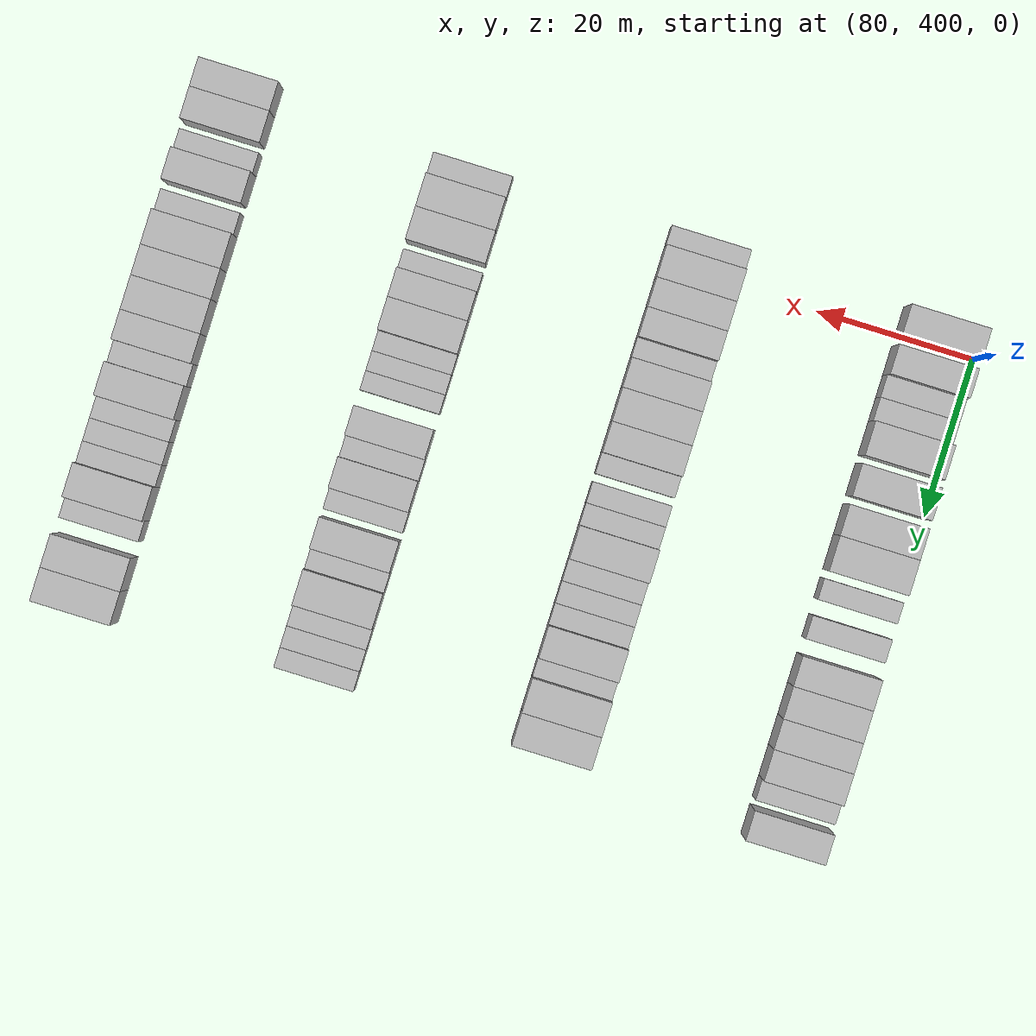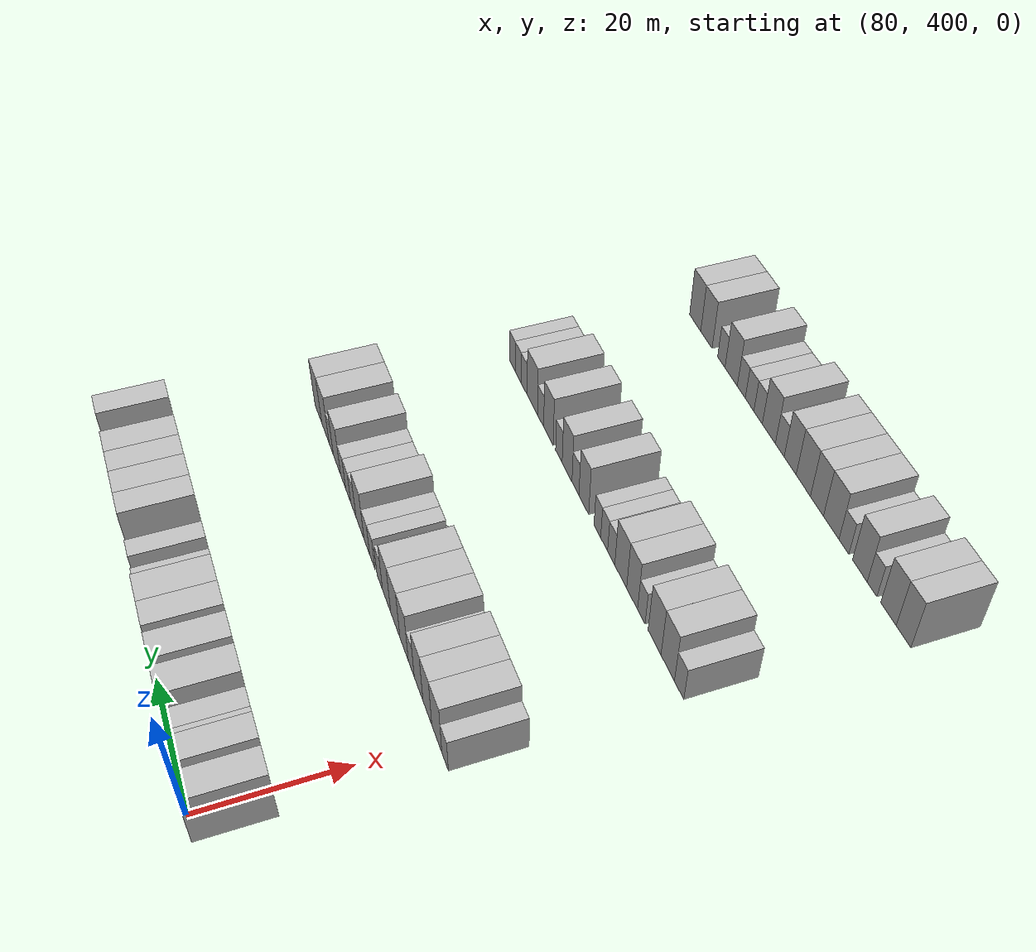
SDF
<sdf version="1.6">
 <world name="default">
  <model name="building_679">
   <static>1</static>
   <pose>85.0000 398.3762 0 0.000000 0.000000 0.000000</pose>
   <link name="link">
    <pose>0 0 4.50 0 0 0</pose>
    <collision name="collision"><geometry><box><size>10.0000 4.0211 9.0000</size></box></geometry></collision>
    <visual name="visual">
     <cast_shadows>0</cast_shadows>
     <geometry><box><size>10.0000 4.0211 9.0000</size></box></geometry>
     <material>
      <script>
       <uri>model://HANNAS_wall/materials/scripts</uri>
       <uri>model://HANNAS_wall/materials/textures</uri>
       <name>vrc/HANNAS_wall</name>
      </script>
     </material>
    </visual>
   </link>
  </model>
  <model name="building_680">
   <static>1</static>
   <pose>85.0000 403.2422 0 0.000000 0.000000 0.000000</pose>
   <link name="link">
    <pose>0 0 4.50 0 0 0</pose>
    <collision name="collision"><geometry><box><size>10.0000 3.7108 9.0000</size></box></geometry></collision>
    <visual name="visual">
     <cast_shadows>0</cast_shadows>
     <geometry><box><size>10.0000 3.7108 9.0000</size></box></geometry>
     <material>
      <script>
       <uri>model://HANNAS_wall/materials/scripts</uri>
       <uri>model://HANNAS_wall/materials/textures</uri>
       <name>vrc/HANNAS_wall</name>
      </script>
     </material>
    </visual>
   </link>
  </model>
  <model name="building_681">
   <static>1</static>
   <pose>85.0000 406.5217 0 0.000000 0.000000 0.000000</pose>
   <link name="link">
    <pose>0 0 3.00 0 0 0</pose>
    <collision name="collision"><geometry><box><size>10.0000 2.8482 6.0000</size></box></geometry></collision>
    <visual name="visual">
     <cast_shadows>0</cast_shadows>
     <geometry><box><size>10.0000 2.8482 6.0000</size></box></geometry>
     <material>
      <script>
       <uri>model://HANNAS_wall/materials/scripts</uri>
       <uri>model://HANNAS_wall/materials/textures</uri>
       <name>vrc/HANNAS_wall</name>
      </script>
     </material>
    </visual>
   </link>
  </model>
  <model name="building_682">
   <static>1</static>
   <pose>85.0000 409.4444 0 0.000000 0.000000 0.000000</pose>
   <link name="link">
    <pose>0 0 3.00 0 0 0</pose>
    <collision name="collision"><geometry><box><size>10.0000 2.9972 6.0000</size></box></geometry></collision>
    <visual name="visual">
     <cast_shadows>0</cast_shadows>
     <geometry><box><size>10.0000 2.9972 6.0000</size></box></geometry>
     <material>
      <script>
       <uri>model://HANNAS_wall/materials/scripts</uri>
       <uri>model://HANNAS_wall/materials/textures</uri>
       <name>vrc/HANNAS_wall</name>
      </script>
     </material>
    </visual>
   </link>
  </model>
  <model name="building_683">
   <static>1</static>
   <pose>85.0000 413.1042 0 0.000000 0.000000 0.000000</pose>
   <link name="link">
    <pose>0 0 4.50 0 0 0</pose>
    <collision name="collision"><geometry><box><size>10.0000 4.3224 9.0000</size></box></geometry></collision>
    <visual name="visual">
     <cast_shadows>0</cast_shadows>
     <geometry><box><size>10.0000 4.3224 9.0000</size></box></geometry>
     <material>
      <script>
       <uri>model://HANNAS_wall/materials/scripts</uri>
       <uri>model://HANNAS_wall/materials/textures</uri>
       <name>vrc/HANNAS_wall</name>
      </script>
     </material>
    </visual>
   </link>
  </model>
  <model name="building_684">
   <static>1</static>
   <pose>85.0000 418.3168 0 0.000000 0.000000 0.000000</pose>
   <link name="link">
    <pose>0 0 4.50 0 0 0</pose>
    <collision name="collision"><geometry><box><size>10.0000 4.1027 9.0000</size></box></geometry></collision>
    <visual name="visual">
     <cast_shadows>0</cast_shadows>
     <geometry><box><size>10.0000 4.1027 9.0000</size></box></geometry>
     <material>
      <script>
       <uri>model://HANNAS_wall/materials/scripts</uri>
       <uri>model://HANNAS_wall/materials/textures</uri>
       <name>vrc/HANNAS_wall</name>
      </script>
     </material>
    </visual>
   </link>
  </model>
  <model name="building_685">
   <static>1</static>
   <pose>85.0000 423.3321 0 0.000000 0.000000 0.000000</pose>
   <link name="link">
    <pose>0 0 4.50 0 0 0</pose>
    <collision name="collision"><geometry><box><size>10.0000 3.9280 9.0000</size></box></geometry></collision>
    <visual name="visual">
     <cast_shadows>0</cast_shadows>
     <geometry><box><size>10.0000 3.9280 9.0000</size></box></geometry>
     <material>
      <script>
       <uri>model://HANNAS_wall/materials/scripts</uri>
       <uri>model://HANNAS_wall/materials/textures</uri>
       <name>vrc/HANNAS_wall</name>
      </script>
     </material>
    </visual>
   </link>
  </model>
  <model name="building_686">
   <static>1</static>
   <pose>85.0000 427.5141 0 0.000000 0.000000 0.000000</pose>
   <link name="link">
    <pose>0 0 4.50 0 0 0</pose>
    <collision name="collision"><geometry><box><size>10.0000 4.4359 9.0000</size></box></geometry></collision>
    <visual name="visual">
     <cast_shadows>0</cast_shadows>
     <geometry><box><size>10.0000 4.4359 9.0000</size></box></geometry>
     <material>
      <script>
       <uri>model://HANNAS_wall/materials/scripts</uri>
       <uri>model://HANNAS_wall/materials/textures</uri>
       <name>vrc/HANNAS_wall</name>
      </script>
     </material>
    </visual>
   </link>
  </model>
  <model name="building_687">
   <static>1</static>
   <pose>85.0000 432.0544 0 0.000000 0.000000 0.000000</pose>
   <link name="link">
    <pose>0 0 3.00 0 0 0</pose>
    <collision name="collision"><geometry><box><size>10.0000 2.6449 6.0000</size></box></geometry></collision>
    <visual name="visual">
     <cast_shadows>0</cast_shadows>
     <geometry><box><size>10.0000 2.6449 6.0000</size></box></geometry>
     <material>
      <script>
       <uri>model://HANNAS_wall/materials/scripts</uri>
       <uri>model://HANNAS_wall/materials/textures</uri>
       <name>vrc/HANNAS_wall</name>
      </script>
     </material>
    </visual>
   </link>
  </model>
  <model name="building_688">
   <static>1</static>
   <pose>85.0000 436.8455 0 0.000000 0.000000 0.000000</pose>
   <link name="link">
    <pose>0 0 3.00 0 0 0</pose>
    <collision name="collision"><geometry><box><size>10.0000 2.9373 6.0000</size></box></geometry></collision>
    <visual name="visual">
     <cast_shadows>0</cast_shadows>
     <geometry><box><size>10.0000 2.9373 6.0000</size></box></geometry>
     <material>
      <script>
       <uri>model://HANNAS_wall/materials/scripts</uri>
       <uri>model://HANNAS_wall/materials/textures</uri>
       <name>vrc/HANNAS_wall</name>
      </script>
     </material>
    </visual>
   </link>
  </model>
  <model name="building_689">
   <static>1</static>
   <pose>85.0000 442.2141 0 0.000000 0.000000 0.000000</pose>
   <link name="link">
    <pose>0 0 4.50 0 0 0</pose>
    <collision name="collision"><geometry><box><size>10.0000 3.7998 9.0000</size></box></geometry></collision>
    <visual name="visual">
     <cast_shadows>0</cast_shadows>
     <geometry><box><size>10.0000 3.7998 9.0000</size></box></geometry>
     <material>
      <script>
       <uri>model://HANNAS_wall/materials/scripts</uri>
       <uri>model://HANNAS_wall/materials/textures</uri>
       <name>vrc/HANNAS_wall</name>
      </script>
     </material>
    </visual>
   </link>
  </model>
  <model name="building_690">
   <static>1</static>
   <pose>85.0000 446.1429 0 0.000000 0.000000 0.000000</pose>
   <link name="link">
    <pose>0 0 4.50 0 0 0</pose>
    <collision name="collision"><geometry><box><size>10.0000 4.0579 9.0000</size></box></geometry></collision>
    <visual name="visual">
     <cast_shadows>0</cast_shadows>
     <geometry><box><size>10.0000 4.0579 9.0000</size></box></geometry>
     <material>
      <script>
       <uri>model://HANNAS_wall/materials/scripts</uri>
       <uri>model://HANNAS_wall/materials/textures</uri>
       <name>vrc/HANNAS_wall</name>
      </script>
     </material>
    </visual>
   </link>
  </model>
  <model name="building_691">
   <static>1</static>
   <pose>85.0000 450.0762 0 0.000000 0.000000 0.000000</pose>
   <link name="link">
    <pose>0 0 4.50 0 0 0</pose>
    <collision name="collision"><geometry><box><size>10.0000 3.8086 9.0000</size></box></geometry></collision>
    <visual name="visual">
     <cast_shadows>0</cast_shadows>
     <geometry><box><size>10.0000 3.8086 9.0000</size></box></geometry>
     <material>
      <script>
       <uri>model://HANNAS_wall/materials/scripts</uri>
       <uri>model://HANNAS_wall/materials/textures</uri>
       <name>vrc/HANNAS_wall</name>
      </script>
     </material>
    </visual>
   </link>
  </model>
  <model name="building_692">
   <static>1</static>
   <pose>85.0000 453.9712 0 0.000000 0.000000 0.000000</pose>
   <link name="link">
    <pose>0 0 4.50 0 0 0</pose>
    <collision name="collision"><geometry><box><size>10.0000 3.9814 9.0000</size></box></geometry></collision>
    <visual name="visual">
     <cast_shadows>0</cast_shadows>
     <geometry><box><size>10.0000 3.9814 9.0000</size></box></geometry>
     <material>
      <script>
       <uri>model://HANNAS_wall/materials/scripts</uri>
       <uri>model://HANNAS_wall/materials/textures</uri>
       <name>vrc/HANNAS_wall</name>
      </script>
     </material>
    </visual>
   </link>
  </model>
  <model name="building_693">
   <static>1</static>
   <pose>85.0000 457.2865 0 0.000000 0.000000 0.000000</pose>
   <link name="link">
    <pose>0 0 3.00 0 0 0</pose>
    <collision name="collision"><geometry><box><size>10.0000 2.6492 6.0000</size></box></geometry></collision>
    <visual name="visual">
     <cast_shadows>0</cast_shadows>
     <geometry><box><size>10.0000 2.6492 6.0000</size></box></geometry>
     <material>
      <script>
       <uri>model://HANNAS_wall/materials/scripts</uri>
       <uri>model://HANNAS_wall/materials/textures</uri>
       <name>vrc/HANNAS_wall</name>
      </script>
     </material>
    </visual>
   </link>
  </model>
  <model name="building_694">
   <static>1</static>
   <pose>85.0000 461.4906 0 0.000000 0.000000 0.000000</pose>
   <link name="link">
    <pose>0 0 4.50 0 0 0</pose>
    <collision name="collision"><geometry><box><size>10.0000 3.7590 9.0000</size></box></geometry></collision>
    <visual name="visual">
     <cast_shadows>0</cast_shadows>
     <geometry><box><size>10.0000 3.7590 9.0000</size></box></geometry>
     <material>
      <script>
       <uri>model://HANNAS_wall/materials/scripts</uri>
       <uri>model://HANNAS_wall/materials/textures</uri>
       <name>vrc/HANNAS_wall</name>
      </script>
     </material>
    </visual>
   </link>
  </model>
  <model name="building_902">
   <static>1</static>
   <pose>115.0000 396.9430 0 0.000000 0.000000 0.000000</pose>
   <link name="link">
    <pose>0 0 3.00 0 0 0</pose>
    <collision name="collision"><geometry><box><size>10.0000 2.5933 6.0000</size></box></geometry></collision>
    <visual name="visual">
     <cast_shadows>0</cast_shadows>
     <geometry><box><size>10.0000 2.5933 6.0000</size></box></geometry>
     <material>
      <script>
       <uri>model://HANNAS_wall/materials/scripts</uri>
       <uri>model://HANNAS_wall/materials/textures</uri>
       <name>vrc/HANNAS_wall</name>
      </script>
     </material>
    </visual>
   </link>
  </model>
  <model name="building_903">
   <static>1</static>
   <pose>115.0000 400.2693 0 0.000000 0.000000 0.000000</pose>
   <link name="link">
    <pose>0 0 4.50 0 0 0</pose>
    <collision name="collision"><geometry><box><size>10.0000 4.0593 9.0000</size></box></geometry></collision>
    <visual name="visual">
     <cast_shadows>0</cast_shadows>
     <geometry><box><size>10.0000 4.0593 9.0000</size></box></geometry>
     <material>
      <script>
       <uri>model://HANNAS_wall/materials/scripts</uri>
       <uri>model://HANNAS_wall/materials/textures</uri>
       <name>vrc/HANNAS_wall</name>
      </script>
     </material>
    </visual>
   </link>
  </model>
  <model name="building_904">
   <static>1</static>
   <pose>115.0000 404.1450 0 0.000000 0.000000 0.000000</pose>
   <link name="link">
    <pose>0 0 4.50 0 0 0</pose>
    <collision name="collision"><geometry><box><size>10.0000 3.6921 9.0000</size></box></geometry></collision>
    <visual name="visual">
     <cast_shadows>0</cast_shadows>
     <geometry><box><size>10.0000 3.6921 9.0000</size></box></geometry>
     <material>
      <script>
       <uri>model://HANNAS_wall/materials/scripts</uri>
       <uri>model://HANNAS_wall/materials/textures</uri>
       <name>vrc/HANNAS_wall</name>
      </script>
     </material>
    </visual>
   </link>
  </model>
  <model name="building_905">
   <static>1</static>
   <pose>115.0000 407.8509 0 0.000000 0.000000 0.000000</pose>
   <link name="link">
    <pose>0 0 4.50 0 0 0</pose>
    <collision name="collision"><geometry><box><size>10.0000 3.7197 9.0000</size></box></geometry></collision>
    <visual name="visual">
     <cast_shadows>0</cast_shadows>
     <geometry><box><size>10.0000 3.7197 9.0000</size></box></geometry>
     <material>
      <script>
       <uri>model://HANNAS_wall/materials/scripts</uri>
       <uri>model://HANNAS_wall/materials/textures</uri>
       <name>vrc/HANNAS_wall</name>
      </script>
     </material>
    </visual>
   </link>
  </model>
  <model name="building_906">
   <static>1</static>
   <pose>115.0000 411.0105 0 0.000000 0.000000 0.000000</pose>
   <link name="link">
    <pose>0 0 3.00 0 0 0</pose>
    <collision name="collision"><geometry><box><size>10.0000 2.5994 6.0000</size></box></geometry></collision>
    <visual name="visual">
     <cast_shadows>0</cast_shadows>
     <geometry><box><size>10.0000 2.5994 6.0000</size></box></geometry>
     <material>
      <script>
       <uri>model://HANNAS_wall/materials/scripts</uri>
       <uri>model://HANNAS_wall/materials/textures</uri>
       <name>vrc/HANNAS_wall</name>
      </script>
     </material>
    </visual>
   </link>
  </model>
  <model name="building_907">
   <static>1</static>
   <pose>115.0000 414.1818 0 0.000000 0.000000 0.000000</pose>
   <link name="link">
    <pose>0 0 4.50 0 0 0</pose>
    <collision name="collision"><geometry><box><size>10.0000 3.7432 9.0000</size></box></geometry></collision>
    <visual name="visual">
     <cast_shadows>0</cast_shadows>
     <geometry><box><size>10.0000 3.7432 9.0000</size></box></geometry>
     <material>
      <script>
       <uri>model://HANNAS_wall/materials/scripts</uri>
       <uri>model://HANNAS_wall/materials/textures</uri>
       <name>vrc/HANNAS_wall</name>
      </script>
     </material>
    </visual>
   </link>
  </model>
  <model name="building_908">
   <static>1</static>
   <pose>115.0000 418.1781 0 0.000000 0.000000 0.000000</pose>
   <link name="link">
    <pose>0 0 4.50 0 0 0</pose>
    <collision name="collision"><geometry><box><size>10.0000 4.2494 9.0000</size></box></geometry></collision>
    <visual name="visual">
     <cast_shadows>0</cast_shadows>
     <geometry><box><size>10.0000 4.2494 9.0000</size></box></geometry>
     <material>
      <script>
       <uri>model://HANNAS_wall/materials/scripts</uri>
       <uri>model://HANNAS_wall/materials/textures</uri>
       <name>vrc/HANNAS_wall</name>
      </script>
     </material>
    </visual>
   </link>
  </model>
  <model name="building_909">
   <static>1</static>
   <pose>115.0000 422.2419 0 0.000000 0.000000 0.000000</pose>
   <link name="link">
    <pose>0 0 4.50 0 0 0</pose>
    <collision name="collision"><geometry><box><size>10.0000 3.8782 9.0000</size></box></geometry></collision>
    <visual name="visual">
     <cast_shadows>0</cast_shadows>
     <geometry><box><size>10.0000 3.8782 9.0000</size></box></geometry>
     <material>
      <script>
       <uri>model://HANNAS_wall/materials/scripts</uri>
       <uri>model://HANNAS_wall/materials/textures</uri>
       <name>vrc/HANNAS_wall</name>
      </script>
     </material>
    </visual>
   </link>
  </model>
  <model name="building_910">
   <static>1</static>
   <pose>115.0000 425.5194 0 0.000000 0.000000 0.000000</pose>
   <link name="link">
    <pose>0 0 3.00 0 0 0</pose>
    <collision name="collision"><geometry><box><size>10.0000 2.6766 6.0000</size></box></geometry></collision>
    <visual name="visual">
     <cast_shadows>0</cast_shadows>
     <geometry><box><size>10.0000 2.6766 6.0000</size></box></geometry>
     <material>
      <script>
       <uri>model://HANNAS_wall/materials/scripts</uri>
       <uri>model://HANNAS_wall/materials/textures</uri>
       <name>vrc/HANNAS_wall</name>
      </script>
     </material>
    </visual>
   </link>
  </model>
  <model name="building_911">
   <static>1</static>
   <pose>115.0000 429.1907 0 0.000000 0.000000 0.000000</pose>
   <link name="link">
    <pose>0 0 3.00 0 0 0</pose>
    <collision name="collision"><geometry><box><size>10.0000 2.6661 6.0000</size></box></geometry></collision>
    <visual name="visual">
     <cast_shadows>0</cast_shadows>
     <geometry><box><size>10.0000 2.6661 6.0000</size></box></geometry>
     <material>
      <script>
       <uri>model://HANNAS_wall/materials/scripts</uri>
       <uri>model://HANNAS_wall/materials/textures</uri>
       <name>vrc/HANNAS_wall</name>
      </script>
     </material>
    </visual>
   </link>
  </model>
  <model name="building_912">
   <static>1</static>
   <pose>115.0000 431.9217 0 0.000000 0.000000 0.000000</pose>
   <link name="link">
    <pose>0 0 3.00 0 0 0</pose>
    <collision name="collision"><geometry><box><size>10.0000 2.7958 6.0000</size></box></geometry></collision>
    <visual name="visual">
     <cast_shadows>0</cast_shadows>
     <geometry><box><size>10.0000 2.7958 6.0000</size></box></geometry>
     <material>
      <script>
       <uri>model://HANNAS_wall/materials/scripts</uri>
       <uri>model://HANNAS_wall/materials/textures</uri>
       <name>vrc/HANNAS_wall</name>
      </script>
     </material>
    </visual>
   </link>
  </model>
  <model name="building_913">
   <static>1</static>
   <pose>115.0000 435.4142 0 0.000000 0.000000 0.000000</pose>
   <link name="link">
    <pose>0 0 4.50 0 0 0</pose>
    <collision name="collision"><geometry><box><size>10.0000 4.1893 9.0000</size></box></geometry></collision>
    <visual name="visual">
     <cast_shadows>0</cast_shadows>
     <geometry><box><size>10.0000 4.1893 9.0000</size></box></geometry>
     <material>
      <script>
       <uri>model://HANNAS_wall/materials/scripts</uri>
       <uri>model://HANNAS_wall/materials/textures</uri>
       <name>vrc/HANNAS_wall</name>
      </script>
     </material>
    </visual>
   </link>
  </model>
  <model name="building_914">
   <static>1</static>
   <pose>115.0000 438.9153 0 0.000000 0.000000 0.000000</pose>
   <link name="link">
    <pose>0 0 3.00 0 0 0</pose>
    <collision name="collision"><geometry><box><size>10.0000 2.8129 6.0000</size></box></geometry></collision>
    <visual name="visual">
     <cast_shadows>0</cast_shadows>
     <geometry><box><size>10.0000 2.8129 6.0000</size></box></geometry>
     <material>
      <script>
       <uri>model://HANNAS_wall/materials/scripts</uri>
       <uri>model://HANNAS_wall/materials/textures</uri>
       <name>vrc/HANNAS_wall</name>
      </script>
     </material>
    </visual>
   </link>
  </model>
  <model name="building_915">
   <static>1</static>
   <pose>115.0000 441.7158 0 0.000000 0.000000 0.000000</pose>
   <link name="link">
    <pose>0 0 3.00 0 0 0</pose>
    <collision name="collision"><geometry><box><size>10.0000 2.7881 6.0000</size></box></geometry></collision>
    <visual name="visual">
     <cast_shadows>0</cast_shadows>
     <geometry><box><size>10.0000 2.7881 6.0000</size></box></geometry>
     <material>
      <script>
       <uri>model://HANNAS_wall/materials/scripts</uri>
       <uri>model://HANNAS_wall/materials/textures</uri>
       <name>vrc/HANNAS_wall</name>
      </script>
     </material>
    </visual>
   </link>
  </model>
  <model name="building_916">
   <static>1</static>
   <pose>115.0000 444.4698 0 0.000000 0.000000 0.000000</pose>
   <link name="link">
    <pose>0 0 3.00 0 0 0</pose>
    <collision name="collision"><geometry><box><size>10.0000 2.7198 6.0000</size></box></geometry></collision>
    <visual name="visual">
     <cast_shadows>0</cast_shadows>
     <geometry><box><size>10.0000 2.7198 6.0000</size></box></geometry>
     <material>
      <script>
       <uri>model://HANNAS_wall/materials/scripts</uri>
       <uri>model://HANNAS_wall/materials/textures</uri>
       <name>vrc/HANNAS_wall</name>
      </script>
     </material>
    </visual>
   </link>
  </model>
  <model name="building_917">
   <static>1</static>
   <pose>115.0000 447.8692 0 0.000000 0.000000 0.000000</pose>
   <link name="link">
    <pose>0 0 4.50 0 0 0</pose>
    <collision name="collision"><geometry><box><size>10.0000 4.0789 9.0000</size></box></geometry></collision>
    <visual name="visual">
     <cast_shadows>0</cast_shadows>
     <geometry><box><size>10.0000 4.0789 9.0000</size></box></geometry>
     <material>
      <script>
       <uri>model://HANNAS_wall/materials/scripts</uri>
       <uri>model://HANNAS_wall/materials/textures</uri>
       <name>vrc/HANNAS_wall</name>
      </script>
     </material>
    </visual>
   </link>
  </model>
  <model name="building_918">
   <static>1</static>
   <pose>115.0000 451.1401 0 0.000000 0.000000 0.000000</pose>
   <link name="link">
    <pose>0 0 3.00 0 0 0</pose>
    <collision name="collision"><geometry><box><size>10.0000 2.4627 6.0000</size></box></geometry></collision>
    <visual name="visual">
     <cast_shadows>0</cast_shadows>
     <geometry><box><size>10.0000 2.4627 6.0000</size></box></geometry>
     <material>
      <script>
       <uri>model://HANNAS_wall/materials/scripts</uri>
       <uri>model://HANNAS_wall/materials/textures</uri>
       <name>vrc/HANNAS_wall</name>
      </script>
     </material>
    </visual>
   </link>
  </model>
  <model name="building_919">
   <static>1</static>
   <pose>115.0000 454.5437 0 0.000000 0.000000 0.000000</pose>
   <link name="link">
    <pose>0 0 4.50 0 0 0</pose>
    <collision name="collision"><geometry><box><size>10.0000 4.3446 9.0000</size></box></geometry></collision>
    <visual name="visual">
     <cast_shadows>0</cast_shadows>
     <geometry><box><size>10.0000 4.3446 9.0000</size></box></geometry>
     <material>
      <script>
       <uri>model://HANNAS_wall/materials/scripts</uri>
       <uri>model://HANNAS_wall/materials/textures</uri>
       <name>vrc/HANNAS_wall</name>
      </script>
     </material>
    </visual>
   </link>
  </model>
  <model name="building_920">
   <static>1</static>
   <pose>115.0000 458.7756 0 0.000000 0.000000 0.000000</pose>
   <link name="link">
    <pose>0 0 4.50 0 0 0</pose>
    <collision name="collision"><geometry><box><size>10.0000 4.1192 9.0000</size></box></geometry></collision>
    <visual name="visual">
     <cast_shadows>0</cast_shadows>
     <geometry><box><size>10.0000 4.1192 9.0000</size></box></geometry>
     <material>
      <script>
       <uri>model://HANNAS_wall/materials/scripts</uri>
       <uri>model://HANNAS_wall/materials/textures</uri>
       <name>vrc/HANNAS_wall</name>
      </script>
     </material>
    </visual>
   </link>
  </model>
  <model name="building_1129">
   <static>1</static>
   <pose>145.0000 397.1536 0 0.000000 0.000000 0.000000</pose>
   <link name="link">
    <pose>0 0 3.00 0 0 0</pose>
    <collision name="collision"><geometry><box><size>10.0000 2.8526 6.0000</size></box></geometry></collision>
    <visual name="visual">
     <cast_shadows>0</cast_shadows>
     <geometry><box><size>10.0000 2.8526 6.0000</size></box></geometry>
     <material>
      <script>
       <uri>model://HANNAS_wall/materials/scripts</uri>
       <uri>model://HANNAS_wall/materials/textures</uri>
       <name>vrc/HANNAS_wall</name>
      </script>
     </material>
    </visual>
   </link>
  </model>
  <model name="building_1130">
   <static>1</static>
   <pose>145.0000 400.6649 0 0.000000 0.000000 0.000000</pose>
   <link name="link">
    <pose>0 0 4.50 0 0 0</pose>
    <collision name="collision"><geometry><box><size>10.0000 4.1701 9.0000</size></box></geometry></collision>
    <visual name="visual">
     <cast_shadows>0</cast_shadows>
     <geometry><box><size>10.0000 4.1701 9.0000</size></box></geometry>
     <material>
      <script>
       <uri>model://HANNAS_wall/materials/scripts</uri>
       <uri>model://HANNAS_wall/materials/textures</uri>
       <name>vrc/HANNAS_wall</name>
      </script>
     </material>
    </visual>
   </link>
  </model>
  <model name="building_1131">
   <static>1</static>
   <pose>145.0000 404.8134 0 0.000000 0.000000 0.000000</pose>
   <link name="link">
    <pose>0 0 4.50 0 0 0</pose>
    <collision name="collision"><geometry><box><size>10.0000 4.1267 9.0000</size></box></geometry></collision>
    <visual name="visual">
     <cast_shadows>0</cast_shadows>
     <geometry><box><size>10.0000 4.1267 9.0000</size></box></geometry>
     <material>
      <script>
       <uri>model://HANNAS_wall/materials/scripts</uri>
       <uri>model://HANNAS_wall/materials/textures</uri>
       <name>vrc/HANNAS_wall</name>
      </script>
     </material>
    </visual>
   </link>
  </model>
  <model name="building_1132">
   <static>1</static>
   <pose>145.0000 409.1134 0 0.000000 0.000000 0.000000</pose>
   <link name="link">
    <pose>0 0 3.00 0 0 0</pose>
    <collision name="collision"><geometry><box><size>10.0000 2.4734 6.0000</size></box></geometry></collision>
    <visual name="visual">
     <cast_shadows>0</cast_shadows>
     <geometry><box><size>10.0000 2.4734 6.0000</size></box></geometry>
     <material>
      <script>
       <uri>model://HANNAS_wall/materials/scripts</uri>
       <uri>model://HANNAS_wall/materials/textures</uri>
       <name>vrc/HANNAS_wall</name>
      </script>
     </material>
    </visual>
   </link>
  </model>
  <model name="building_1133">
   <static>1</static>
   <pose>145.0000 412.1909 0 0.000000 0.000000 0.000000</pose>
   <link name="link">
    <pose>0 0 4.50 0 0 0</pose>
    <collision name="collision"><geometry><box><size>10.0000 3.6815 9.0000</size></box></geometry></collision>
    <visual name="visual">
     <cast_shadows>0</cast_shadows>
     <geometry><box><size>10.0000 3.6815 9.0000</size></box></geometry>
     <material>
      <script>
       <uri>model://HANNAS_wall/materials/scripts</uri>
       <uri>model://HANNAS_wall/materials/textures</uri>
       <name>vrc/HANNAS_wall</name>
      </script>
     </material>
    </visual>
   </link>
  </model>
  <model name="building_1134">
   <static>1</static>
   <pose>145.0000 416.0917 0 0.000000 0.000000 0.000000</pose>
   <link name="link">
    <pose>0 0 4.50 0 0 0</pose>
    <collision name="collision"><geometry><box><size>10.0000 4.1201 9.0000</size></box></geometry></collision>
    <visual name="visual">
     <cast_shadows>0</cast_shadows>
     <geometry><box><size>10.0000 4.1201 9.0000</size></box></geometry>
     <material>
      <script>
       <uri>model://HANNAS_wall/materials/scripts</uri>
       <uri>model://HANNAS_wall/materials/textures</uri>
       <name>vrc/HANNAS_wall</name>
      </script>
     </material>
    </visual>
   </link>
  </model>
  <model name="building_1135">
   <static>1</static>
   <pose>145.0000 419.4230 0 0.000000 0.000000 0.000000</pose>
   <link name="link">
    <pose>0 0 3.00 0 0 0</pose>
    <collision name="collision"><geometry><box><size>10.0000 2.5425 6.0000</size></box></geometry></collision>
    <visual name="visual">
     <cast_shadows>0</cast_shadows>
     <geometry><box><size>10.0000 2.5425 6.0000</size></box></geometry>
     <material>
      <script>
       <uri>model://HANNAS_wall/materials/scripts</uri>
       <uri>model://HANNAS_wall/materials/textures</uri>
       <name>vrc/HANNAS_wall</name>
      </script>
     </material>
    </visual>
   </link>
  </model>
  <model name="building_1136">
   <static>1</static>
   <pose>145.0000 421.9467 0 0.000000 0.000000 0.000000</pose>
   <link name="link">
    <pose>0 0 3.00 0 0 0</pose>
    <collision name="collision"><geometry><box><size>10.0000 2.5048 6.0000</size></box></geometry></collision>
    <visual name="visual">
     <cast_shadows>0</cast_shadows>
     <geometry><box><size>10.0000 2.5048 6.0000</size></box></geometry>
     <material>
      <script>
       <uri>model://HANNAS_wall/materials/scripts</uri>
       <uri>model://HANNAS_wall/materials/textures</uri>
       <name>vrc/HANNAS_wall</name>
      </script>
     </material>
    </visual>
   </link>
  </model>
  <model name="building_1137">
   <static>1</static>
   <pose>145.0000 424.4106 0 0.000000 0.000000 0.000000</pose>
   <link name="link">
    <pose>0 0 3.00 0 0 0</pose>
    <collision name="collision"><geometry><box><size>10.0000 2.4231 6.0000</size></box></geometry></collision>
    <visual name="visual">
     <cast_shadows>0</cast_shadows>
     <geometry><box><size>10.0000 2.4231 6.0000</size></box></geometry>
     <material>
      <script>
       <uri>model://HANNAS_wall/materials/scripts</uri>
       <uri>model://HANNAS_wall/materials/textures</uri>
       <name>vrc/HANNAS_wall</name>
      </script>
     </material>
    </visual>
   </link>
  </model>
  <model name="building_1138">
   <static>1</static>
   <pose>145.0000 429.4824 0 0.000000 0.000000 0.000000</pose>
   <link name="link">
    <pose>0 0 4.50 0 0 0</pose>
    <collision name="collision"><geometry><box><size>10.0000 3.7204 9.0000</size></box></geometry></collision>
    <visual name="visual">
     <cast_shadows>0</cast_shadows>
     <geometry><box><size>10.0000 3.7204 9.0000</size></box></geometry>
     <material>
      <script>
       <uri>model://HANNAS_wall/materials/scripts</uri>
       <uri>model://HANNAS_wall/materials/textures</uri>
       <name>vrc/HANNAS_wall</name>
      </script>
     </material>
    </visual>
   </link>
  </model>
  <model name="building_1139">
   <static>1</static>
   <pose>145.0000 432.6887 0 0.000000 0.000000 0.000000</pose>
   <link name="link">
    <pose>0 0 3.00 0 0 0</pose>
    <collision name="collision"><geometry><box><size>10.0000 2.6922 6.0000</size></box></geometry></collision>
    <visual name="visual">
     <cast_shadows>0</cast_shadows>
     <geometry><box><size>10.0000 2.6922 6.0000</size></box></geometry>
     <material>
      <script>
       <uri>model://HANNAS_wall/materials/scripts</uri>
       <uri>model://HANNAS_wall/materials/textures</uri>
       <name>vrc/HANNAS_wall</name>
      </script>
     </material>
    </visual>
   </link>
  </model>
  <model name="building_1140">
   <static>1</static>
   <pose>145.0000 435.9820 0 0.000000 0.000000 0.000000</pose>
   <link name="link">
    <pose>0 0 4.50 0 0 0</pose>
    <collision name="collision"><geometry><box><size>10.0000 3.8946 9.0000</size></box></geometry></collision>
    <visual name="visual">
     <cast_shadows>0</cast_shadows>
     <geometry><box><size>10.0000 3.8946 9.0000</size></box></geometry>
     <material>
      <script>
       <uri>model://HANNAS_wall/materials/scripts</uri>
       <uri>model://HANNAS_wall/materials/textures</uri>
       <name>vrc/HANNAS_wall</name>
      </script>
     </material>
    </visual>
   </link>
  </model>
  <model name="building_1141">
   <static>1</static>
   <pose>145.0000 439.2480 0 0.000000 0.000000 0.000000</pose>
   <link name="link">
    <pose>0 0 3.00 0 0 0</pose>
    <collision name="collision"><geometry><box><size>10.0000 2.6372 6.0000</size></box></geometry></collision>
    <visual name="visual">
     <cast_shadows>0</cast_shadows>
     <geometry><box><size>10.0000 2.6372 6.0000</size></box></geometry>
     <material>
      <script>
       <uri>model://HANNAS_wall/materials/scripts</uri>
       <uri>model://HANNAS_wall/materials/textures</uri>
       <name>vrc/HANNAS_wall</name>
      </script>
     </material>
    </visual>
   </link>
  </model>
  <model name="building_1142">
   <static>1</static>
   <pose>145.0000 443.5392 0 0.000000 0.000000 0.000000</pose>
   <link name="link">
    <pose>0 0 4.50 0 0 0</pose>
    <collision name="collision"><geometry><box><size>10.0000 3.9452 9.0000</size></box></geometry></collision>
    <visual name="visual">
     <cast_shadows>0</cast_shadows>
     <geometry><box><size>10.0000 3.9452 9.0000</size></box></geometry>
     <material>
      <script>
       <uri>model://HANNAS_wall/materials/scripts</uri>
       <uri>model://HANNAS_wall/materials/textures</uri>
       <name>vrc/HANNAS_wall</name>
      </script>
     </material>
    </visual>
   </link>
  </model>
  <model name="building_1143">
   <static>1</static>
   <pose>145.0000 446.8028 0 0.000000 0.000000 0.000000</pose>
   <link name="link">
    <pose>0 0 3.00 0 0 0</pose>
    <collision name="collision"><geometry><box><size>10.0000 2.5820 6.0000</size></box></geometry></collision>
    <visual name="visual">
     <cast_shadows>0</cast_shadows>
     <geometry><box><size>10.0000 2.5820 6.0000</size></box></geometry>
     <material>
      <script>
       <uri>model://HANNAS_wall/materials/scripts</uri>
       <uri>model://HANNAS_wall/materials/textures</uri>
       <name>vrc/HANNAS_wall</name>
      </script>
     </material>
    </visual>
   </link>
  </model>
  <model name="building_1144">
   <static>1</static>
   <pose>145.0000 450.3370 0 0.000000 0.000000 0.000000</pose>
   <link name="link">
    <pose>0 0 4.50 0 0 0</pose>
    <collision name="collision"><geometry><box><size>10.0000 4.4864 9.0000</size></box></geometry></collision>
    <visual name="visual">
     <cast_shadows>0</cast_shadows>
     <geometry><box><size>10.0000 4.4864 9.0000</size></box></geometry>
     <material>
      <script>
       <uri>model://HANNAS_wall/materials/scripts</uri>
       <uri>model://HANNAS_wall/materials/textures</uri>
       <name>vrc/HANNAS_wall</name>
      </script>
     </material>
    </visual>
   </link>
  </model>
  <model name="building_1145">
   <static>1</static>
   <pose>145.0000 453.9338 0 0.000000 0.000000 0.000000</pose>
   <link name="link">
    <pose>0 0 3.00 0 0 0</pose>
    <collision name="collision"><geometry><box><size>10.0000 2.7071 6.0000</size></box></geometry></collision>
    <visual name="visual">
     <cast_shadows>0</cast_shadows>
     <geometry><box><size>10.0000 2.7071 6.0000</size></box></geometry>
     <material>
      <script>
       <uri>model://HANNAS_wall/materials/scripts</uri>
       <uri>model://HANNAS_wall/materials/textures</uri>
       <name>vrc/HANNAS_wall</name>
      </script>
     </material>
    </visual>
   </link>
  </model>
  <model name="building_1146">
   <static>1</static>
   <pose>145.0000 456.6365 0 0.000000 0.000000 0.000000</pose>
   <link name="link">
    <pose>0 0 3.00 0 0 0</pose>
    <collision name="collision"><geometry><box><size>10.0000 2.6983 6.0000</size></box></geometry></collision>
    <visual name="visual">
     <cast_shadows>0</cast_shadows>
     <geometry><box><size>10.0000 2.6983 6.0000</size></box></geometry>
     <material>
      <script>
       <uri>model://HANNAS_wall/materials/scripts</uri>
       <uri>model://HANNAS_wall/materials/textures</uri>
       <name>vrc/HANNAS_wall</name>
      </script>
     </material>
    </visual>
   </link>
  </model>
  <model name="building_1147">
   <static>1</static>
   <pose>145.0000 459.2426 0 0.000000 0.000000 0.000000</pose>
   <link name="link">
    <pose>0 0 3.00 0 0 0</pose>
    <collision name="collision"><geometry><box><size>10.0000 2.5140 6.0000</size></box></geometry></collision>
    <visual name="visual">
     <cast_shadows>0</cast_shadows>
     <geometry><box><size>10.0000 2.5140 6.0000</size></box></geometry>
     <material>
      <script>
       <uri>model://HANNAS_wall/materials/scripts</uri>
       <uri>model://HANNAS_wall/materials/textures</uri>
       <name>vrc/HANNAS_wall</name>
      </script>
     </material>
    </visual>
   </link>
  </model>
  <model name="building_1359">
   <static>1</static>
   <pose>175.0000 395.2462 0 0.000000 0.000000 0.000000</pose>
   <link name="link">
    <pose>0 0 4.50 0 0 0</pose>
    <collision name="collision"><geometry><box><size>10.0000 3.6574 9.0000</size></box></geometry></collision>
    <visual name="visual">
     <cast_shadows>0</cast_shadows>
     <geometry><box><size>10.0000 3.6574 9.0000</size></box></geometry>
     <material>
      <script>
       <uri>model://HANNAS_wall/materials/scripts</uri>
       <uri>model://HANNAS_wall/materials/textures</uri>
       <name>vrc/HANNAS_wall</name>
      </script>
     </material>
    </visual>
   </link>
  </model>
  <model name="building_1360">
   <static>1</static>
   <pose>175.0000 399.0672 0 0.000000 0.000000 0.000000</pose>
   <link name="link">
    <pose>0 0 4.50 0 0 0</pose>
    <collision name="collision"><geometry><box><size>10.0000 3.9845 9.0000</size></box></geometry></collision>
    <visual name="visual">
     <cast_shadows>0</cast_shadows>
     <geometry><box><size>10.0000 3.9845 9.0000</size></box></geometry>
     <material>
      <script>
       <uri>model://HANNAS_wall/materials/scripts</uri>
       <uri>model://HANNAS_wall/materials/textures</uri>
       <name>vrc/HANNAS_wall</name>
      </script>
     </material>
    </visual>
   </link>
  </model>
  <model name="building_1361">
   <static>1</static>
   <pose>175.0000 403.3426 0 0.000000 0.000000 0.000000</pose>
   <link name="link">
    <pose>0 0 3.00 0 0 0</pose>
    <collision name="collision"><geometry><box><size>10.0000 2.5663 6.0000</size></box></geometry></collision>
    <visual name="visual">
     <cast_shadows>0</cast_shadows>
     <geometry><box><size>10.0000 2.5663 6.0000</size></box></geometry>
     <material>
      <script>
       <uri>model://HANNAS_wall/materials/scripts</uri>
       <uri>model://HANNAS_wall/materials/textures</uri>
       <name>vrc/HANNAS_wall</name>
      </script>
     </material>
    </visual>
   </link>
  </model>
  <model name="building_1362">
   <static>1</static>
   <pose>175.0000 406.6240 0 0.000000 0.000000 0.000000</pose>
   <link name="link">
    <pose>0 0 4.50 0 0 0</pose>
    <collision name="collision"><geometry><box><size>10.0000 3.9964 9.0000</size></box></geometry></collision>
    <visual name="visual">
     <cast_shadows>0</cast_shadows>
     <geometry><box><size>10.0000 3.9964 9.0000</size></box></geometry>
     <material>
      <script>
       <uri>model://HANNAS_wall/materials/scripts</uri>
       <uri>model://HANNAS_wall/materials/textures</uri>
       <name>vrc/HANNAS_wall</name>
      </script>
     </material>
    </visual>
   </link>
  </model>
  <model name="building_1363">
   <static>1</static>
   <pose>175.0000 410.9946 0 0.000000 0.000000 0.000000</pose>
   <link name="link">
    <pose>0 0 3.00 0 0 0</pose>
    <collision name="collision"><geometry><box><size>10.0000 2.7449 6.0000</size></box></geometry></collision>
    <visual name="visual">
     <cast_shadows>0</cast_shadows>
     <geometry><box><size>10.0000 2.7449 6.0000</size></box></geometry>
     <material>
      <script>
       <uri>model://HANNAS_wall/materials/scripts</uri>
       <uri>model://HANNAS_wall/materials/textures</uri>
       <name>vrc/HANNAS_wall</name>
      </script>
     </material>
    </visual>
   </link>
  </model>
  <model name="building_1364">
   <static>1</static>
   <pose>175.0000 414.5783 0 0.000000 0.000000 0.000000</pose>
   <link name="link">
    <pose>0 0 4.50 0 0 0</pose>
    <collision name="collision"><geometry><box><size>10.0000 4.4225 9.0000</size></box></geometry></collision>
    <visual name="visual">
     <cast_shadows>0</cast_shadows>
     <geometry><box><size>10.0000 4.4225 9.0000</size></box></geometry>
     <material>
      <script>
       <uri>model://HANNAS_wall/materials/scripts</uri>
       <uri>model://HANNAS_wall/materials/textures</uri>
       <name>vrc/HANNAS_wall</name>
      </script>
     </material>
    </visual>
   </link>
  </model>
  <model name="building_1365">
   <static>1</static>
   <pose>175.0000 418.7051 0 0.000000 0.000000 0.000000</pose>
   <link name="link">
    <pose>0 0 4.50 0 0 0</pose>
    <collision name="collision"><geometry><box><size>10.0000 3.8310 9.0000</size></box></geometry></collision>
    <visual name="visual">
     <cast_shadows>0</cast_shadows>
     <geometry><box><size>10.0000 3.8310 9.0000</size></box></geometry>
     <material>
      <script>
       <uri>model://HANNAS_wall/materials/scripts</uri>
       <uri>model://HANNAS_wall/materials/textures</uri>
       <name>vrc/HANNAS_wall</name>
      </script>
     </material>
    </visual>
   </link>
  </model>
  <model name="building_1366">
   <static>1</static>
   <pose>175.0000 422.7772 0 0.000000 0.000000 0.000000</pose>
   <link name="link">
    <pose>0 0 4.50 0 0 0</pose>
    <collision name="collision"><geometry><box><size>10.0000 4.3131 9.0000</size></box></geometry></collision>
    <visual name="visual">
     <cast_shadows>0</cast_shadows>
     <geometry><box><size>10.0000 4.3131 9.0000</size></box></geometry>
     <material>
      <script>
       <uri>model://HANNAS_wall/materials/scripts</uri>
       <uri>model://HANNAS_wall/materials/textures</uri>
       <name>vrc/HANNAS_wall</name>
      </script>
     </material>
    </visual>
   </link>
  </model>
  <model name="building_1367">
   <static>1</static>
   <pose>175.0000 426.7918 0 0.000000 0.000000 0.000000</pose>
   <link name="link">
    <pose>0 0 4.50 0 0 0</pose>
    <collision name="collision"><geometry><box><size>10.0000 3.7162 9.0000</size></box></geometry></collision>
    <visual name="visual">
     <cast_shadows>0</cast_shadows>
     <geometry><box><size>10.0000 3.7162 9.0000</size></box></geometry>
     <material>
      <script>
       <uri>model://HANNAS_wall/materials/scripts</uri>
       <uri>model://HANNAS_wall/materials/textures</uri>
       <name>vrc/HANNAS_wall</name>
      </script>
     </material>
    </visual>
   </link>
  </model>
  <model name="building_1368">
   <static>1</static>
   <pose>175.0000 430.0404 0 0.000000 0.000000 0.000000</pose>
   <link name="link">
    <pose>0 0 3.00 0 0 0</pose>
    <collision name="collision"><geometry><box><size>10.0000 2.7811 6.0000</size></box></geometry></collision>
    <visual name="visual">
     <cast_shadows>0</cast_shadows>
     <geometry><box><size>10.0000 2.7811 6.0000</size></box></geometry>
     <material>
      <script>
       <uri>model://HANNAS_wall/materials/scripts</uri>
       <uri>model://HANNAS_wall/materials/textures</uri>
       <name>vrc/HANNAS_wall</name>
      </script>
     </material>
    </visual>
   </link>
  </model>
  <model name="building_1369">
   <static>1</static>
   <pose>175.0000 433.5459 0 0.000000 0.000000 0.000000</pose>
   <link name="link">
    <pose>0 0 4.50 0 0 0</pose>
    <collision name="collision"><geometry><box><size>10.0000 4.2301 9.0000</size></box></geometry></collision>
    <visual name="visual">
     <cast_shadows>0</cast_shadows>
     <geometry><box><size>10.0000 4.2301 9.0000</size></box></geometry>
     <material>
      <script>
       <uri>model://HANNAS_wall/materials/scripts</uri>
       <uri>model://HANNAS_wall/materials/textures</uri>
       <name>vrc/HANNAS_wall</name>
      </script>
     </material>
    </visual>
   </link>
  </model>
  <model name="building_1370">
   <static>1</static>
   <pose>175.0000 437.0521 0 0.000000 0.000000 0.000000</pose>
   <link name="link">
    <pose>0 0 3.00 0 0 0</pose>
    <collision name="collision"><geometry><box><size>10.0000 2.7823 6.0000</size></box></geometry></collision>
    <visual name="visual">
     <cast_shadows>0</cast_shadows>
     <geometry><box><size>10.0000 2.7823 6.0000</size></box></geometry>
     <material>
      <script>
       <uri>model://HANNAS_wall/materials/scripts</uri>
       <uri>model://HANNAS_wall/materials/textures</uri>
       <name>vrc/HANNAS_wall</name>
      </script>
     </material>
    </visual>
   </link>
  </model>
  <model name="building_1371">
   <static>1</static>
   <pose>175.0000 439.8893 0 0.000000 0.000000 0.000000</pose>
   <link name="link">
    <pose>0 0 3.00 0 0 0</pose>
    <collision name="collision"><geometry><box><size>10.0000 2.8921 6.0000</size></box></geometry></collision>
    <visual name="visual">
     <cast_shadows>0</cast_shadows>
     <geometry><box><size>10.0000 2.8921 6.0000</size></box></geometry>
     <material>
      <script>
       <uri>model://HANNAS_wall/materials/scripts</uri>
       <uri>model://HANNAS_wall/materials/textures</uri>
       <name>vrc/HANNAS_wall</name>
      </script>
     </material>
    </visual>
   </link>
  </model>
  <model name="building_1372">
   <static>1</static>
   <pose>175.0000 442.6983 0 0.000000 0.000000 0.000000</pose>
   <link name="link">
    <pose>0 0 3.00 0 0 0</pose>
    <collision name="collision"><geometry><box><size>10.0000 2.7258 6.0000</size></box></geometry></collision>
    <visual name="visual">
     <cast_shadows>0</cast_shadows>
     <geometry><box><size>10.0000 2.7258 6.0000</size></box></geometry>
     <material>
      <script>
       <uri>model://HANNAS_wall/materials/scripts</uri>
       <uri>model://HANNAS_wall/materials/textures</uri>
       <name>vrc/HANNAS_wall</name>
      </script>
     </material>
    </visual>
   </link>
  </model>
  <model name="building_1373">
   <static>1</static>
   <pose>175.0000 446.2072 0 0.000000 0.000000 0.000000</pose>
   <link name="link">
    <pose>0 0 4.50 0 0 0</pose>
    <collision name="collision"><geometry><box><size>10.0000 4.2920 9.0000</size></box></geometry></collision>
    <visual name="visual">
     <cast_shadows>0</cast_shadows>
     <geometry><box><size>10.0000 4.2920 9.0000</size></box></geometry>
     <material>
      <script>
       <uri>model://HANNAS_wall/materials/scripts</uri>
       <uri>model://HANNAS_wall/materials/textures</uri>
       <name>vrc/HANNAS_wall</name>
      </script>
     </material>
    </visual>
   </link>
  </model>
  <model name="building_1374">
   <static>1</static>
   <pose>175.0000 449.6576 0 0.000000 0.000000 0.000000</pose>
   <link name="link">
    <pose>0 0 3.00 0 0 0</pose>
    <collision name="collision"><geometry><box><size>10.0000 2.6088 6.0000</size></box></geometry></collision>
    <visual name="visual">
     <cast_shadows>0</cast_shadows>
     <geometry><box><size>10.0000 2.6088 6.0000</size></box></geometry>
     <material>
      <script>
       <uri>model://HANNAS_wall/materials/scripts</uri>
       <uri>model://HANNAS_wall/materials/textures</uri>
       <name>vrc/HANNAS_wall</name>
      </script>
     </material>
    </visual>
   </link>
  </model>
  <model name="building_1375">
   <static>1</static>
   <pose>175.0000 455.0531 0 0.000000 0.000000 0.000000</pose>
   <link name="link">
    <pose>0 0 4.50 0 0 0</pose>
    <collision name="collision"><geometry><box><size>10.0000 4.1821 9.0000</size></box></geometry></collision>
    <visual name="visual">
     <cast_shadows>0</cast_shadows>
     <geometry><box><size>10.0000 4.1821 9.0000</size></box></geometry>
     <material>
      <script>
       <uri>model://HANNAS_wall/materials/scripts</uri>
       <uri>model://HANNAS_wall/materials/textures</uri>
       <name>vrc/HANNAS_wall</name>
      </script>
     </material>
    </visual>
   </link>
  </model>
  <model name="building_1376">
   <static>1</static>
   <pose>175.0000 459.2445 0 0.000000 0.000000 0.000000</pose>
   <link name="link">
    <pose>0 0 4.50 0 0 0</pose>
    <collision name="collision"><geometry><box><size>10.0000 4.2006 9.0000</size></box></geometry></collision>
    <visual name="visual">
     <cast_shadows>0</cast_shadows>
     <geometry><box><size>10.0000 4.2006 9.0000</size></box></geometry>
     <material>
      <script>
       <uri>model://HANNAS_wall/materials/scripts</uri>
       <uri>model://HANNAS_wall/materials/textures</uri>
       <name>vrc/HANNAS_wall</name>
      </script>
     </material>
    </visual>
   </link>
  </model>
 </world>
</sdf>
